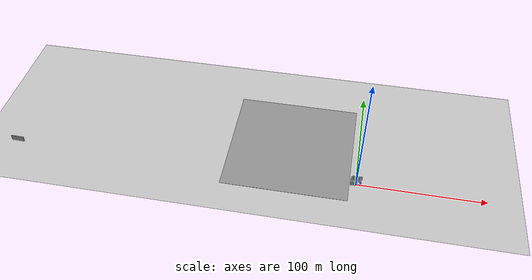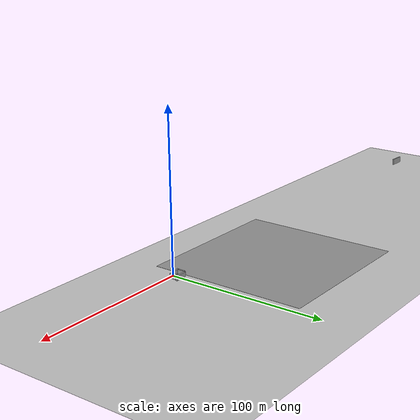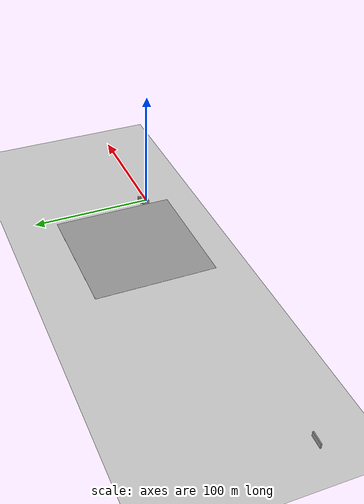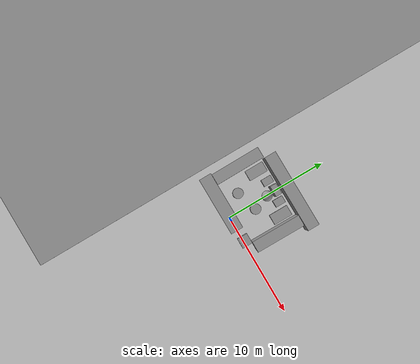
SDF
<sdf version="1.6">
 <world name="default">
  <light name="sun" type="directional">
   <pose>0 0 10 0 -0 0</pose>
   <diffuse>0.8 0.8 0.8 1</diffuse>
   <specular>0.2 0.2 0.2 1</specular>
   <attenuation>
    <range>1000</range>
    <constant>0.9</constant>
    <linear>0.01</linear>
    <quadratic>0.001</quadratic>
   </attenuation>
   <direction>-0.5 0.1 -0.9</direction>
  </light>
  <model name="ground_plane">
   <static>1</static>
   <link name="link">
    <collision name="collision">
     <geometry><plane><normal>0 0 1</normal><size>100 100</size></plane></geometry>
     <surface><friction><ode><mu>100</mu><mu2>50</mu2></ode></friction></surface>
    </collision>
    <visual name="visual">
     <cast_shadows>0</cast_shadows>
     <geometry><plane><normal>0 0 1</normal><size>100 100</size></plane></geometry>
     <material>
      <script><uri>file://media/materials/scripts/gazebo.material</uri><name>Gazebo/Grey</name></script>
     </material>
    </visual>
   </link>
  </model>
  <gravity>0 0 -9.8</gravity>
  <magnetic_field>6e-06 2.3e-05 -4.2e-05</magnetic_field>
  <atmosphere type="adiabatic"/>
  <physics name="default_physics" default="0" type="ode">
   <max_step_size>0.001</max_step_size>
   <real_time_factor>1</real_time_factor>
   <real_time_update_rate>1000</real_time_update_rate>
  </physics>
  <scene><ambient>0.4 0.4 0.4 1</ambient><background>0.7 0.7 0.7 1</background><shadows>1</shadows></scene>
  <spherical_coordinates>
   <surface_model>EARTH_WGS84</surface_model>
   <latitude_deg>0</latitude_deg>
   <longitude_deg>0</longitude_deg>
   <elevation>0</elevation>
   <heading_deg>0</heading_deg>
  </spherical_coordinates>
  <model name="unit_box">
   <pose>2.16778 4.22526 0.2067 0 5e-06 -0.000131</pose>
   <link name="link">
    <inertial>
     <mass>1</mass>
     <inertia>
      <ixx>0.166667</ixx>
      <ixy>0</ixy>
      <ixz>0</ixz>
      <iyy>0.166667</iyy>
      <iyz>0</iyz>
      <izz>0.166667</izz>
     </inertia>
    </inertial>
    <collision name="collision"><geometry><box><size>1 1.85664 0.413405</size></box></geometry></collision>
    <visual name="visual">
     <geometry><box><size>1 1.85664 0.413405</size></box></geometry>
     <material>
      <script><name>Gazebo/Grey</name><uri>file://media/materials/scripts/gazebo.material</uri></script>
     </material>
    </visual>
   </link>
  </model>
  <model name="unit_box_0">
   <pose>-0.111965 4.89651 1.22027 -1e-06 -2e-06 0.002131</pose>
   <link name="link">
    <inertial>
     <mass>1</mass>
     <inertia>
      <ixx>0.166667</ixx>
      <ixy>0</ixy>
      <ixz>0</ixz>
      <iyy>0.166667</iyy>
      <iyz>0</iyz>
      <izz>0.166667</izz>
     </inertia>
    </inertial>
    <collision name="collision"><geometry><box><size>1.04614 0.61386 2.44055</size></box></geometry></collision>
    <visual name="visual">
     <geometry><box><size>1.04614 0.61386 2.44055</size></box></geometry>
     <material>
      <script><name>Gazebo/Grey</name><uri>file://media/materials/scripts/gazebo.material</uri></script>
     </material>
    </visual>
   </link>
  </model>
  <model name="unit_box_1_clone">
   <pose>-1.16904 4.76032 0.315594 -4e-06 -8e-06 0.002174</pose>
   <link name="link">
    <inertial>
     <mass>1</mass>
     <inertia>
      <ixx>0.166667</ixx>
      <ixy>0</ixy>
      <ixz>0</ixz>
      <iyy>0.166667</iyy>
      <iyz>0</iyz>
      <izz>0.166667</izz>
     </inertia>
    </inertial>
    <collision name="collision"><geometry><box><size>0.67948 1 0.631198</size></box></geometry></collision>
    <visual name="visual">
     <geometry><box><size>0.67948 1 0.631198</size></box></geometry>
     <material>
      <script><name>Gazebo/Grey</name><uri>file://media/materials/scripts/gazebo.material</uri></script>
     </material>
    </visual>
   </link>
  </model>
  <model name="unit_box_2">
   <pose>-279.604 -2.55027 2.13236 0.000171 -0.004502 -0.038071</pose>
   <link name="link">
    <inertial>
     <mass>1</mass>
     <inertia>
      <ixx>0.166667</ixx>
      <ixy>0</ixy>
      <ixz>0</ixz>
      <iyy>0.166667</iyy>
      <iyz>0</iyz>
      <izz>0.166667</izz>
     </inertia>
    </inertial>
    <collision name="collision"><geometry><box><size>10.6307 0.864185 4.31218</size></box></geometry></collision>
    <visual name="visual">
     <geometry><box><size>10.6307 0.864185 4.31218</size></box></geometry>
     <material>
      <script><name>Gazebo/Grey</name><uri>file://media/materials/scripts/gazebo.material</uri></script>
     </material>
    </visual>
   </link>
  </model>
  <model name="ground_plane_1">
   <static>1</static>
   <link name="link">
    <collision name="collision">
     <geometry><plane><normal>0 0 1</normal><size>100 100</size></plane></geometry>
     <surface><friction><ode><mu>100</mu><mu2>50</mu2></ode></friction></surface>
    </collision>
    <visual name="visual">
     <cast_shadows>0</cast_shadows>
     <geometry><plane><normal>0 0 1</normal><size>100 100</size></plane></geometry>
     <material>
      <script><uri>file://media/materials/scripts/gazebo.material</uri><name>Gazebo/Grey</name></script>
     </material>
    </visual>
   </link>
   <pose>-55.1214 32.7178 0 0 -0 0</pose>
  </model>
  <model name="unit_box_3">
   <pose>3.34689 3.04208 1.47433 -0.000162 -2e-06 -0.006904</pose>
   <link name="link">
    <inertial>
     <mass>1</mass>
     <inertia>
      <ixx>0.166667</ixx>
      <ixy>0</ixy>
      <ixz>0</ixz>
      <iyy>0.166667</iyy>
      <iyz>0</iyz>
      <izz>0.166667</izz>
     </inertia>
    </inertial>
    <collision name="collision"><geometry><box><size>1.05856 4.78123 2.94944</size></box></geometry></collision>
    <visual name="visual">
     <geometry><box><size>1.05856 4.78123 2.94944</size></box></geometry>
     <material>
      <script><name>Gazebo/Grey</name><uri>file://media/materials/scripts/gazebo.material</uri></script>
     </material>
    </visual>
   </link>
  </model>
  <model name="unit_box_3_clone">
   <pose>-3.73132 3.00415 1.47432 0.000167 -2e-06 0.005883</pose>
   <link name="link">
    <inertial>
     <mass>1</mass>
     <inertia>
      <ixx>0.166667</ixx>
      <ixy>0</ixy>
      <ixz>0</ixz>
      <iyy>0.166667</iyy>
      <iyz>0</iyz>
      <izz>0.166667</izz>
     </inertia>
    </inertial>
    <collision name="collision"><geometry><box><size>1.05856 4.80357 2.94944</size></box></geometry></collision>
    <visual name="visual">
     <geometry><box><size>1.05856 4.80357 2.94944</size></box></geometry>
     <material>
      <script><name>Gazebo/Grey</name><uri>file://media/materials/scripts/gazebo.material</uri></script>
     </material>
    </visual>
   </link>
  </model>
  <model name="unit_box_3_clone_0">
   <pose>0.675363 6.02976 1.46796 -0.001779 1.1e-05 1.57684</pose>
   <link name="link">
    <inertial>
     <mass>1</mass>
     <inertia>
      <ixx>0.166667</ixx>
      <ixy>0</ixy>
      <ixz>0</ixz>
      <iyy>0.166667</iyy>
      <iyz>0</iyz>
      <izz>0.166667</izz>
     </inertia>
    </inertial>
    <collision name="collision"><geometry><box><size>1.14142 7.62028 2.94944</size></box></geometry></collision>
    <visual name="visual">
     <geometry><box><size>1.14142 7.62028 2.94944</size></box></geometry>
     <material>
      <script><name>Gazebo/Grey</name><uri>file://media/materials/scripts/gazebo.material</uri></script>
     </material>
    </visual>
   </link>
  </model>
  <model name="unit_box_3_clone_0_clone">
   <pose>-1.58075 -0.0031 1.47354 0.000418 -2e-06 1.57467</pose>
   <link name="link">
    <inertial>
     <mass>1</mass>
     <inertia>
      <ixx>0.166667</ixx>
      <ixy>0</ixy>
      <ixz>0</ixz>
      <iyy>0.166667</iyy>
      <iyz>0</iyz>
      <izz>0.166667</izz>
     </inertia>
    </inertial>
    <collision name="collision"><geometry><box><size>1.20204 5.61496 2.94943</size></box></geometry></collision>
    <visual name="visual">
     <geometry><box><size>1.20204 5.61496 2.94943</size></box></geometry>
     <material>
      <script><name>Gazebo/Grey</name><uri>file://media/materials/scripts/gazebo.material</uri></script>
     </material>
    </visual>
   </link>
  </model>
  <model name="unit_box_clone_0">
   <pose>-2.46977 4.33961 0.206703 0 0 -0.00013</pose>
   <link name="link">
    <inertial>
     <mass>1</mass>
     <inertia>
      <ixx>0.166667</ixx>
      <ixy>0</ixy>
      <ixz>0</ixz>
      <iyy>0.166667</iyy>
      <iyz>0</iyz>
      <izz>0.166667</izz>
     </inertia>
    </inertial>
    <collision name="collision"><geometry><box><size>1 1.85664 0.413405</size></box></geometry></collision>
    <visual name="visual">
     <geometry><box><size>1 1.85664 0.413405</size></box></geometry>
     <material>
      <script><name>Gazebo/Grey</name><uri>file://media/materials/scripts/gazebo.material</uri></script>
     </material>
    </visual>
   </link>
  </model>
  <model name="unit_box_1_clone_clone">
   <pose>1.00897 4.72318 0.315597 0 -1e-06 0.002176</pose>
   <link name="link">
    <inertial>
     <mass>1</mass>
     <inertia>
      <ixx>0.166667</ixx>
      <ixy>0</ixy>
      <ixz>0</ixz>
      <iyy>0.166667</iyy>
      <iyz>0</iyz>
      <izz>0.166667</izz>
     </inertia>
    </inertial>
    <collision name="collision"><geometry><box><size>0.67948 1 0.631198</size></box></geometry></collision>
    <visual name="visual">
     <geometry><box><size>0.67948 1 0.631198</size></box></geometry>
     <material>
      <script><name>Gazebo/Grey</name><uri>file://media/materials/scripts/gazebo.material</uri></script>
     </material>
    </visual>
   </link>
  </model>
  <model name="unit_cylinder">
   <pose>0.490527 2.50239 0.499993 3e-06 3e-06 0</pose>
   <link name="link">
    <inertial>
     <mass>1</mass>
     <inertia><ixx>0.145833</ixx><ixy>0</ixy><ixz>0</ixz><iyy>0.145833</iyy><iyz>0</iyz><izz>0.125</izz></inertia>
    </inertial>
    <collision name="collision">
     <geometry><cylinder><radius>0.5</radius><length>1</length></cylinder></geometry>
    </collision>
    <visual name="visual">
     <geometry><cylinder><radius>0.5</radius><length>1</length></cylinder></geometry>
     <material>
      <script><name>Gazebo/Grey</name><uri>file://media/materials/scripts/gazebo.material</uri></script>
     </material>
    </visual>
   </link>
  </model>
  <model name="unit_cylinder_0">
   <pose>-1.57306 1.84676 0.499997 -3e-06 -3e-06 0</pose>
   <link name="link">
    <inertial>
     <mass>1</mass>
     <inertia><ixx>0.145833</ixx><ixy>0</ixy><ixz>0</ixz><iyy>0.145833</iyy><iyz>0</iyz><izz>0.125</izz></inertia>
    </inertial>
    <collision name="collision">
     <geometry><cylinder><radius>0.5</radius><length>1</length></cylinder></geometry>
    </collision>
    <visual name="visual">
     <geometry><cylinder><radius>0.5</radius><length>1</length></cylinder></geometry>
     <material>
      <script><name>Gazebo/Grey</name><uri>file://media/materials/scripts/gazebo.material</uri></script>
     </material>
    </visual>
   </link>
  </model>
  <model name="unit_box_1">
   <pose>2.50067 0.150819 0.499995 -1e-05 -0 -0.001164</pose>
   <link name="link">
    <inertial>
     <mass>1</mass>
     <inertia>
      <ixx>0.166667</ixx>
      <ixy>0</ixy>
      <ixz>0</ixz>
      <iyy>0.166667</iyy>
      <iyz>0</iyz>
      <izz>0.166667</izz>
     </inertia>
    </inertial>
    <collision name="collision"><geometry><box><size>1 1 1</size></box></geometry></collision>
    <visual name="visual">
     <geometry><box><size>1 1 1</size></box></geometry>
     <material>
      <script><name>Gazebo/Grey</name><uri>file://media/materials/scripts/gazebo.material</uri></script>
     </material>
    </visual>
   </link>
  </model>
  <model name="unit_sphere">
   <pose>0.003097 4.03601 0.49999 0 -0 0</pose>
   <link name="link">
    <inertial>
     <mass>1</mass>
     <inertia><ixx>0.1</ixx><ixy>0</ixy><ixz>0</ixz><iyy>0.1</iyy><iyz>0</iyz><izz>0.1</izz></inertia>
    </inertial>
    <collision name="collision"><geometry><sphere><radius>0.5</radius></sphere></geometry></collision>
    <visual name="visual">
     <geometry><sphere><radius>0.5</radius></sphere></geometry>
     <material>
      <script><name>Gazebo/Grey</name><uri>file://media/materials/scripts/gazebo.material</uri></script>
     </material>
    </visual>
   </link>
  </model>
 </world>
</sdf>
